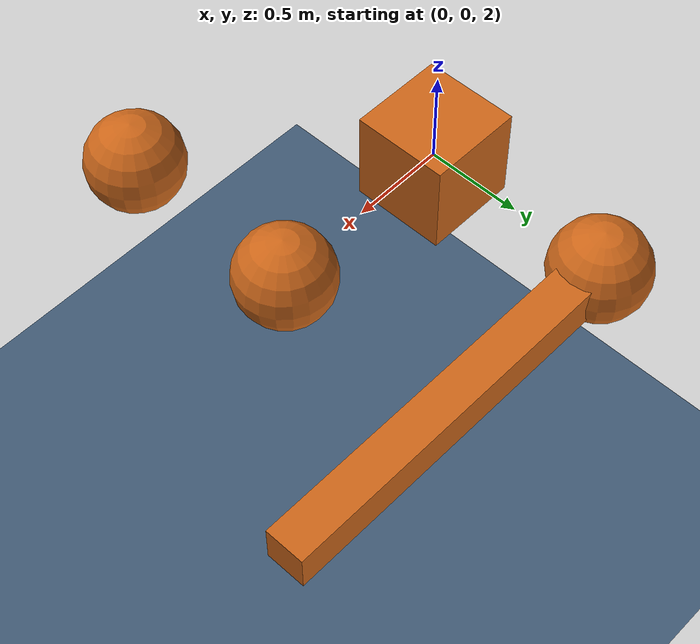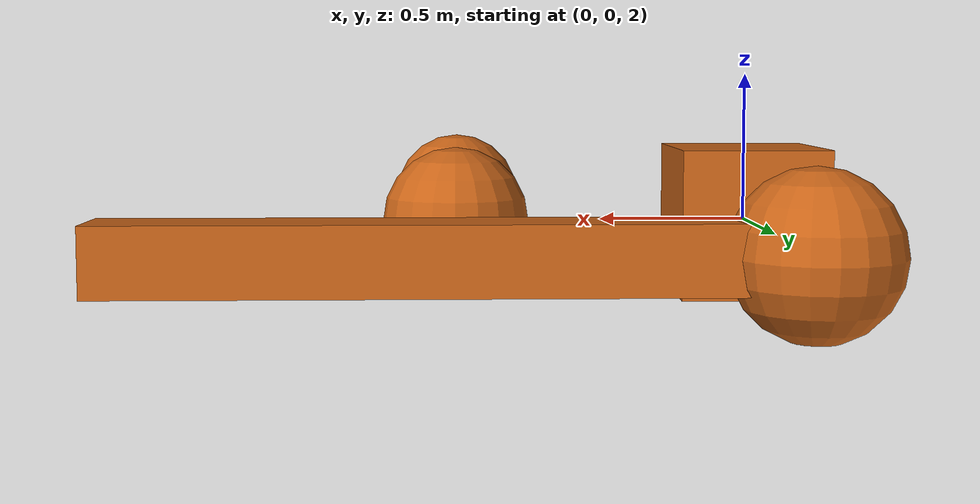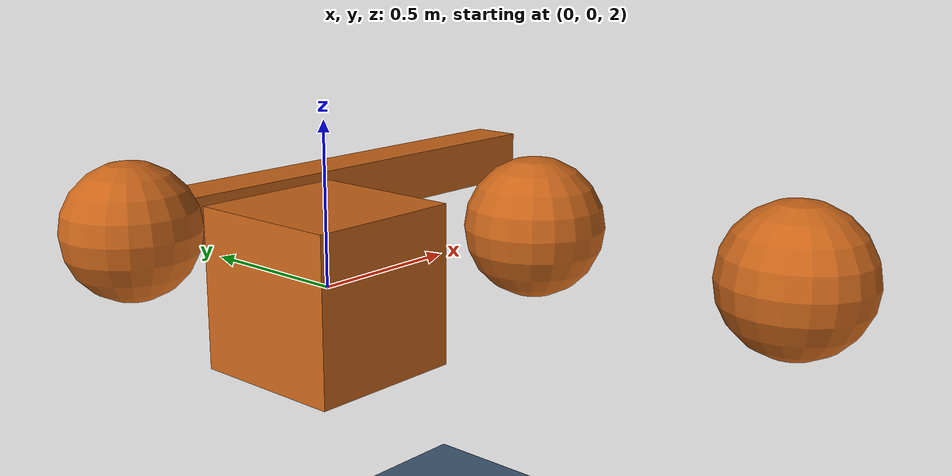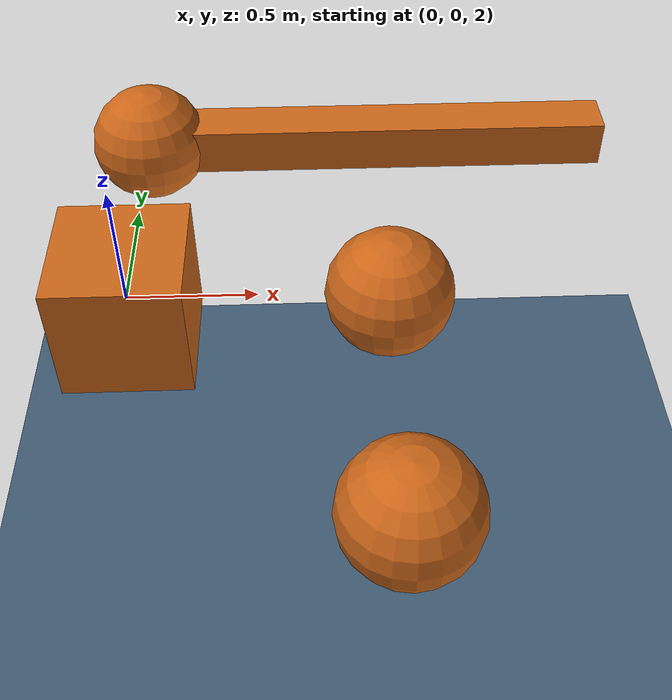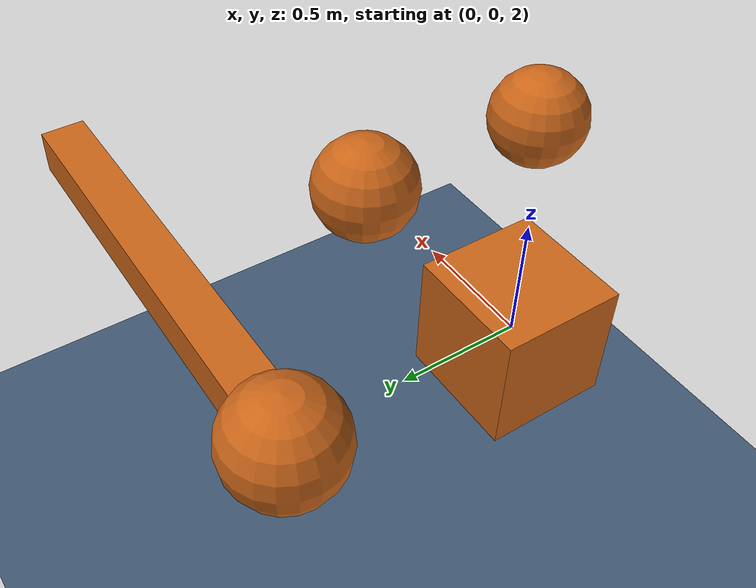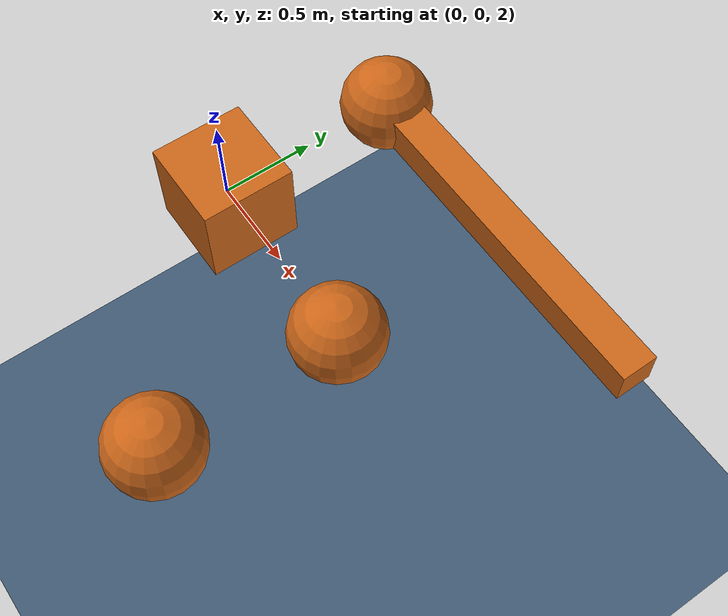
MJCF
<mujoco model="demo">
  <compiler angle="degree" coordinate="local"/>

  <!-- Gravity is enabled by default -->
  <option gravity="0 0 -1" timestep="0.002">
    <flag warmstart="enable"/>
  </option>

  <!-- Visual settings -->
  <visual>
    <headlight ambient="0.5 0.5 0.5" diffuse="0.8 0.8 0.8"/>
    <rgba haze="0.15 0.25 0.35 1"/>  <!-- Haze for depth perception -->
    <global azimuth="10" elevation="-40"/>
  </visual>

  <!-- Assets: materials and textures -->
  <asset>
    <texture type="skybox" builtin="gradient" rgb1="0.3 0.5 0.7" rgb2="0 0 0" width="512" height="512"/>
    <texture name="grid" type="2d" builtin="checker" rgb1="0.2 0.3 0.4" rgb2="0.3 0.4 0.5" width="512" height="512"/>
    <material name="grid" texture="grid" texrepeat="1 1" texuniform="true" reflectance="0.2"/>
    <material name="robot" rgba="0.7 0.3 0.3 1"/>
    <material name="object" rgba="0.3 0.7 0.3 1"/>
  </asset>

  <!-- World body -->
  <worldbody>
    <!-- Floor -->
    <geom name="floor" type="plane" size="5 5 0.1" material="grid"/>

    <!-- Lighting -->
    <light pos="0 0 3" dir="0 0 -1" directional="true"/>

    <!-- Static objects -->
    <body name="static_box" pos="0 0 2">
      <geom name="box" type="box" size="0.25 0.25 0.25" rgba="0.8 0.4 0.1 1" mass="0.2"/>
    </body>

    <!-- Free-falling objects -->
    <!-- TODO -->
    <body name="fallingsphere1" pos="1 0 2">
      <geom name="sphere1" type="sphere" size="0.25" rgba="0.8 0.4 0.1 1" mass="0.2"/>
      <freejoint/>
    </body>
    <body name="fallingsphere2" pos="0 1 2">
      <geom name="sphere2" type="sphere" size="0.25" rgba="0.8 0.4 0.1 1" mass="0.2"/>
      <freejoint/>
    </body>

    <!-- Simple 2-link robot arm -->
    <!-- TODO -->
    <body name="arm1" pos="1 1 2">
      <geom name="arm1" type="box" size="1 0.1 0.1" rgba="0.8 0.4 0.1 1" mass="0.2"/>
      <freejoint/>
    </body>
    <body name="fallingsphere2" pos="1 -1 2">
      <geom name="sphere2" type="sphere" size="0.25" rgba="0.8 0.4 0.1 1" mass="0.2"/>
      <freejoint/>
    </body>

  </worldbody>

</mujoco>
